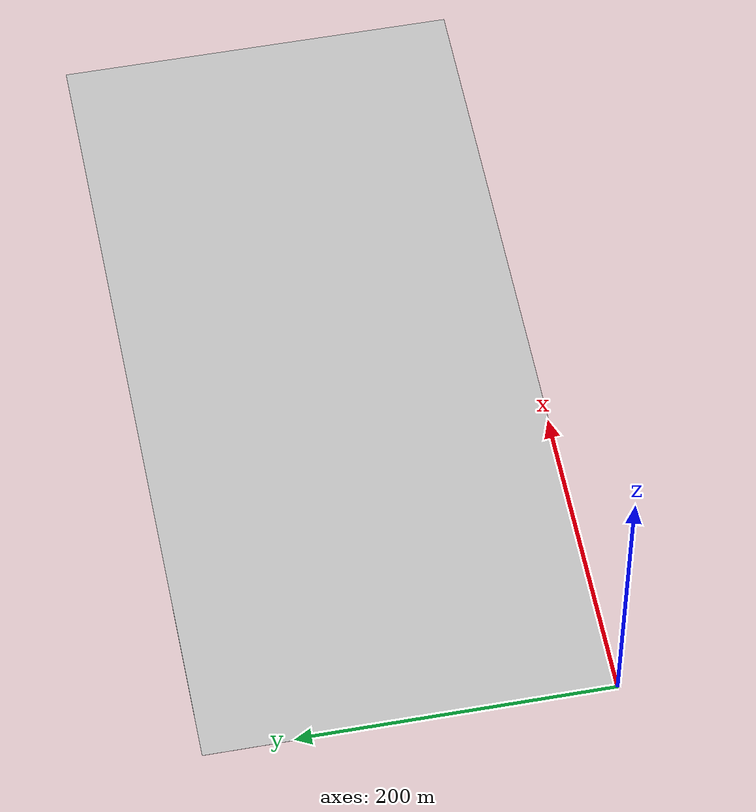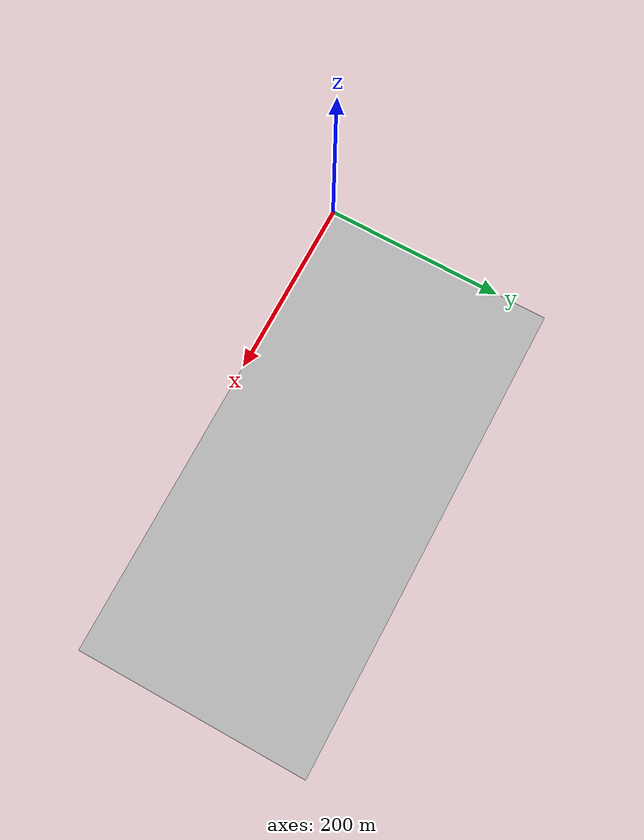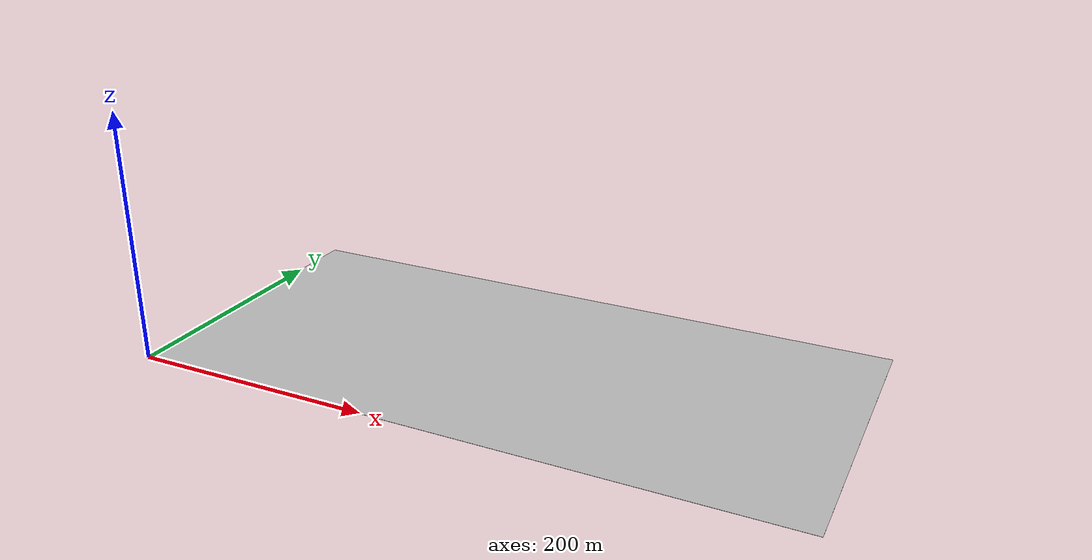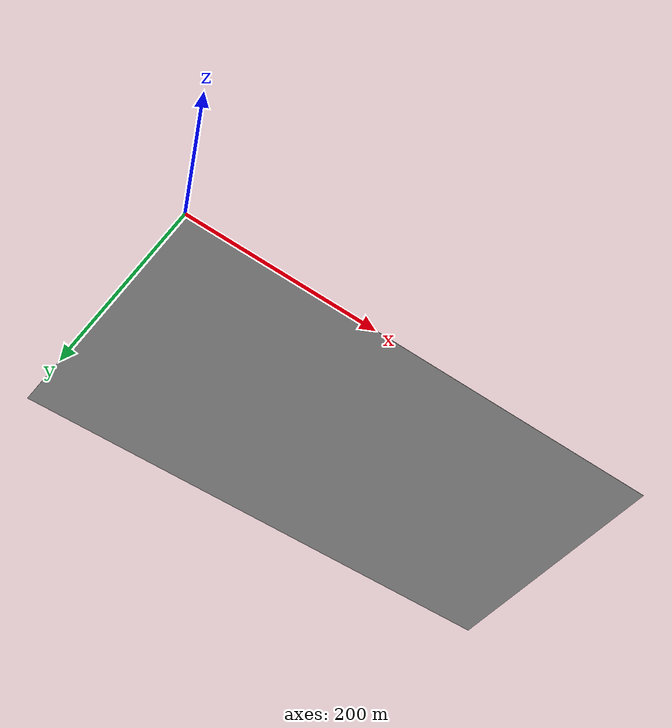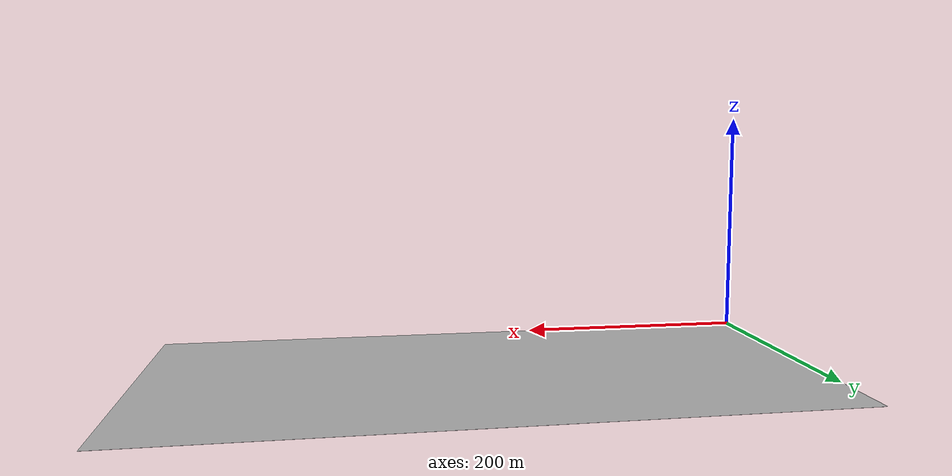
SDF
<?xml version="1.0"?>
<sdf version="1.4">
<model name="robocars">
  <pose> 266 128 0 0 0 1.5708 </pose>
  <static>true</static>
    <link name="link">
      <collision name="collision">
        <geometry>
          <box>
            <size>257 533 0</size>
          </box>
        </geometry>
      </collision>
      <visual name="visual">
        <cast_shadows>false</cast_shadows>
        <geometry>
          <box>
            <size>257 533 .1</size>
          </box>
        </geometry>
        <material>
          <script>
            <uri>model://robocars/materials/scripts</uri>
            <uri>model://robocars/materials/textures</uri>
            <name>robocars/Image</name>
          </script>
        </material>
      </visual>
    </link>
  </model>
</sdf>
